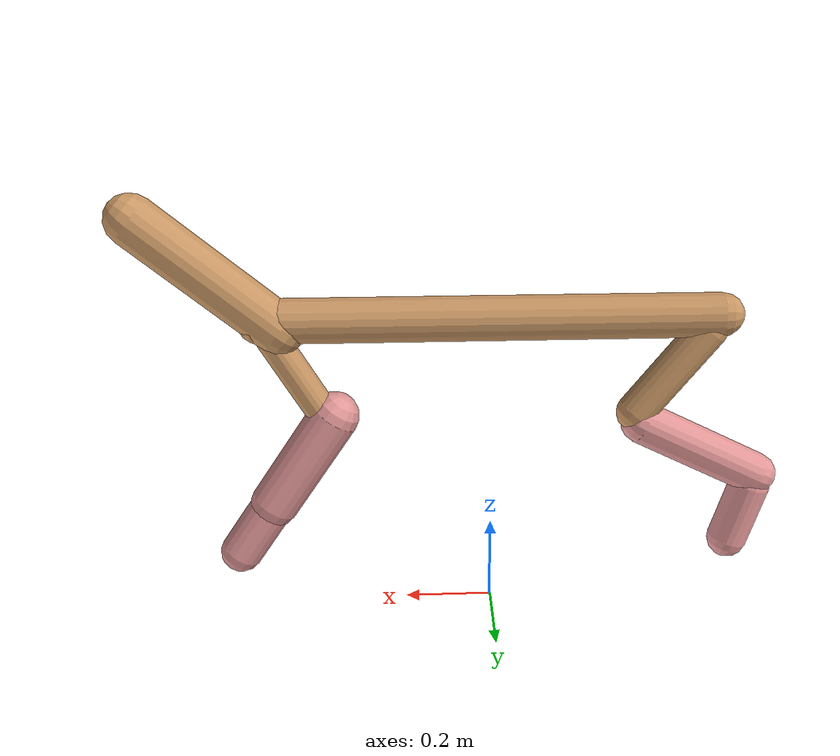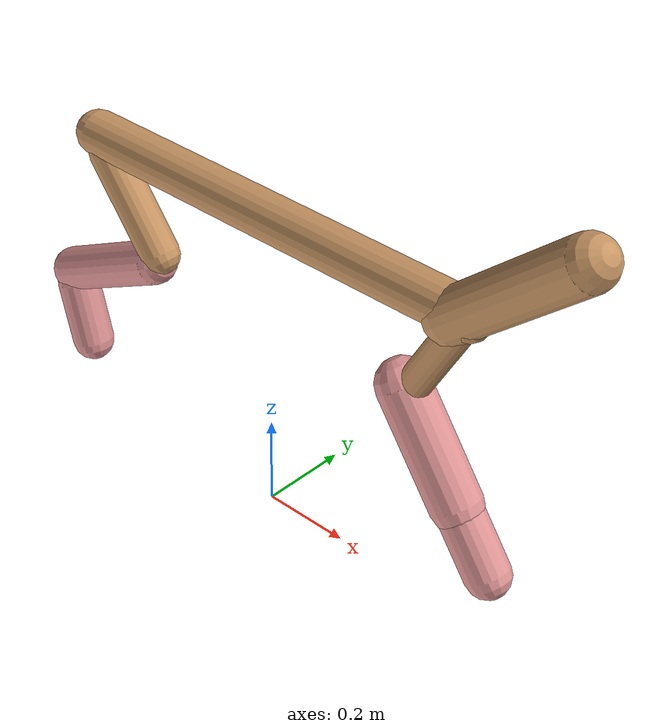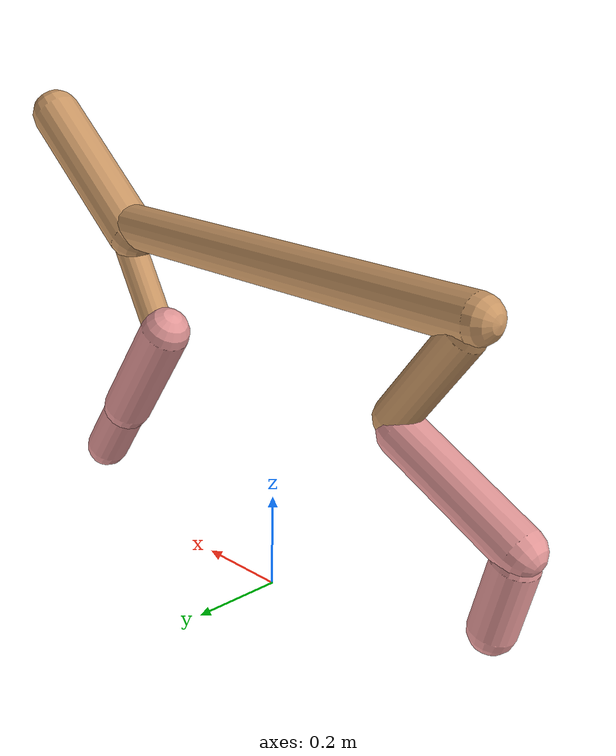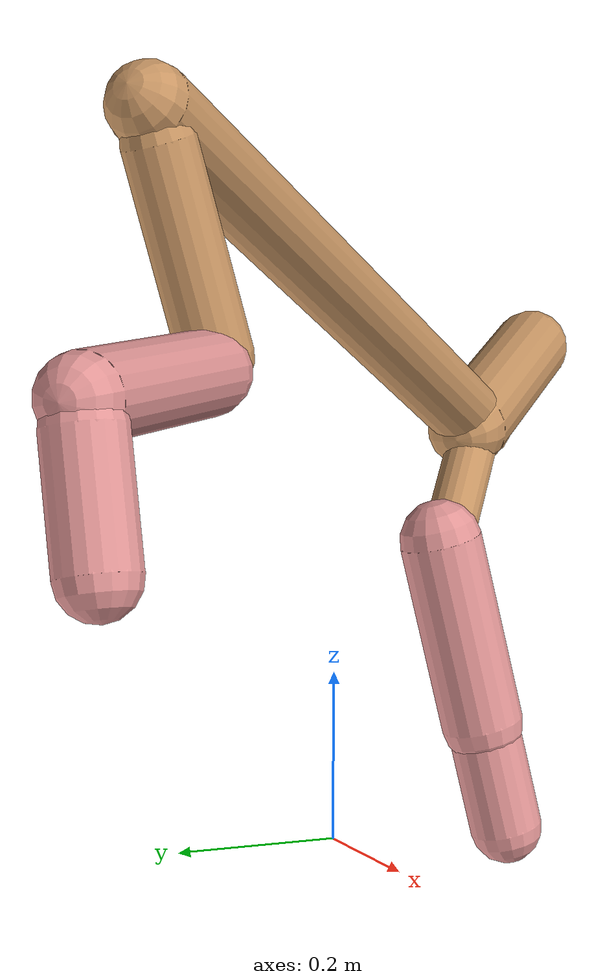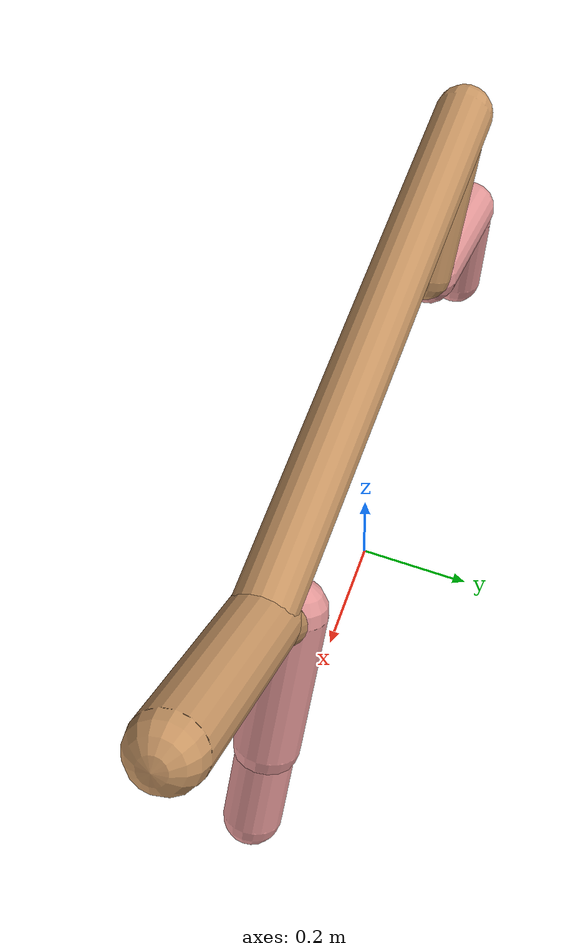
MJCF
<?xml version="1.0" encoding="utf-8"?>
<mujoco model="cheetah">
	<compiler angle="radian" coordinate="local" inertiafromgeom="true" settotalmass="14"></compiler>
	<default>
		<joint armature=".1" damping="0.008226686242807785" limited="true" solimplimit="0 .8 .03" solreflimit=".02 1" stiffness="6.2557126988383285"></joint>
		<geom conaffinity="0" condim="3" contype="1" friction="0.9109417887484214 0.12183896847732215 0.07330619548526836" rgba="0.8 0.6 .4 1" solimp="0.0 0.8 0.01" solref="0.02 1"></geom>
		<motor ctrllimited="true" ctrlrange="-1 1"></motor>
	</default>
	<size nstack="300000" nuser_geom="1"></size>
	<option gravity="0 0 -9.81" timestep="0.01"></option>
	<worldbody>
		<body name="torso" pos="0 0 .7">
			<joint armature="0" axis="1 0 0" damping="0.0" limited="false" name="ignorex" pos="0 0 0" stiffness="0.0" type="slide"></joint>
			<joint armature="0" axis="0 0 1" damping="0.0" limited="false" name="ignorez" pos="0 0 0" stiffness="0.0" type="slide"></joint>
			<joint armature="0" axis="0 1 0" damping="0.0" limited="false" name="ignorey" pos="0 0 0" stiffness="0.0" type="hinge"></joint>
			<geom fromto="-.5 0 0 .5 0 0" name="torso" size="0.04901616316219318" type="capsule"></geom>
			<geom axisangle="0 1 0 .87" name="head" pos=".6 0 .1" size="0.05580055958377706 0.1844456113746602" type="capsule"></geom>
			<body name="bthigh" pos="-.5 0 0">
				<joint axis="0 1 0" damping="6.242700448709727" name="bthigh" pos="0 0 0" range="-.52 1.05" stiffness="220.85904668232254" type="hinge"></joint>
				<geom axisangle="0 1 0 -3.8" name="bthigh" pos=".1 0 -.13" size="0.042846638336499654 0.12256537603375482" type="capsule"></geom>
				<body name="bshin" pos=".16 0 -.25">
					<joint axis="0 1 0" damping="3.764898475765889" name="bshin" pos="0 0 0" range="-.785 .785" stiffness="224.81681879592912" type="hinge"></joint>
					<geom axisangle="0 1 0 -2.03" name="bshin" pos="-.14 0 -.07" rgba="0.9 0.6 0.6 1" size="0.04877988748960505 0.15290283854963754" type="capsule"></geom>
					<body name="bfoot" pos="-.28 0 -.14">
						<joint axis="0 1 0" damping="3.2483853139254775" name="bfoot" pos="0 0 0" range="-.4 .785" stiffness="98.42623534722526" type="hinge"></joint>
						<geom axisangle="0 1 0 -.27" name="bfoot" pos=".03 0 -.097" rgba="0.9 0.6 0.6 1" size="0.04671667690218684 0.07431867113232345" type="capsule"></geom>
						<inertial mass="10"></inertial>
					</body>
				</body>
			</body>
			<body name="fthigh" pos=".5 0 0">
				<joint axis="0 1 0" damping="3.857624644155002" name="fthigh" pos="0 0 0" range="-1.5 0.8" stiffness="126.43634777620521" type="hinge"></joint>
				<geom axisangle="0 1 0 .52" name="fthigh" pos="-.07 0 -.12" size="0.035230829270480324 0.11454601734211949" type="capsule"></geom>
				<body name="fshin" pos="-.14 0 -.24">
					<joint axis="0 1 0" damping="3.0827832662008587" name="fshin" pos="0 0 0" range="-1.2 1.1" stiffness="127.28014459816275" type="hinge"></joint>
					<geom axisangle="0 1 0 -.6" name="fshin" pos=".065 0 -.09" rgba="0.9 0.6 0.6 1" size="0.05548183536929535 0.13102349880154235" type="capsule"></geom>
					<body name="ffoot" pos=".13 0 -.18">
						<joint axis="0 1 0" damping="1.2539315463360132" name="ffoot" pos="0 0 0" range="-3.1 -0.3" stiffness="47.989234736691856" type="hinge"></joint>
						<geom axisangle="0 1 0 -.6" name="ffoot" pos=".045 0 -.07" rgba="0.9 0.6 0.6 1" size="0.04900673985008566 0.08844261264695588" type="capsule"></geom>
						<inertial mass="10"></inertial>
					</body>
				</body>
			</body>
		</body>
	</worldbody>
	<actuator>
		<motor gear="120" joint="bthigh" name="bthigh"></motor>
		<motor gear="90" joint="bshin" name="bshin"></motor>
		<motor gear="60" joint="bfoot" name="bfoot"></motor>
		<motor gear="120" joint="fthigh" name="fthigh"></motor>
		<motor gear="60" joint="fshin" name="fshin"></motor>
		<motor gear="30" joint="ffoot" name="ffoot"></motor>
	</actuator>
</mujoco>
